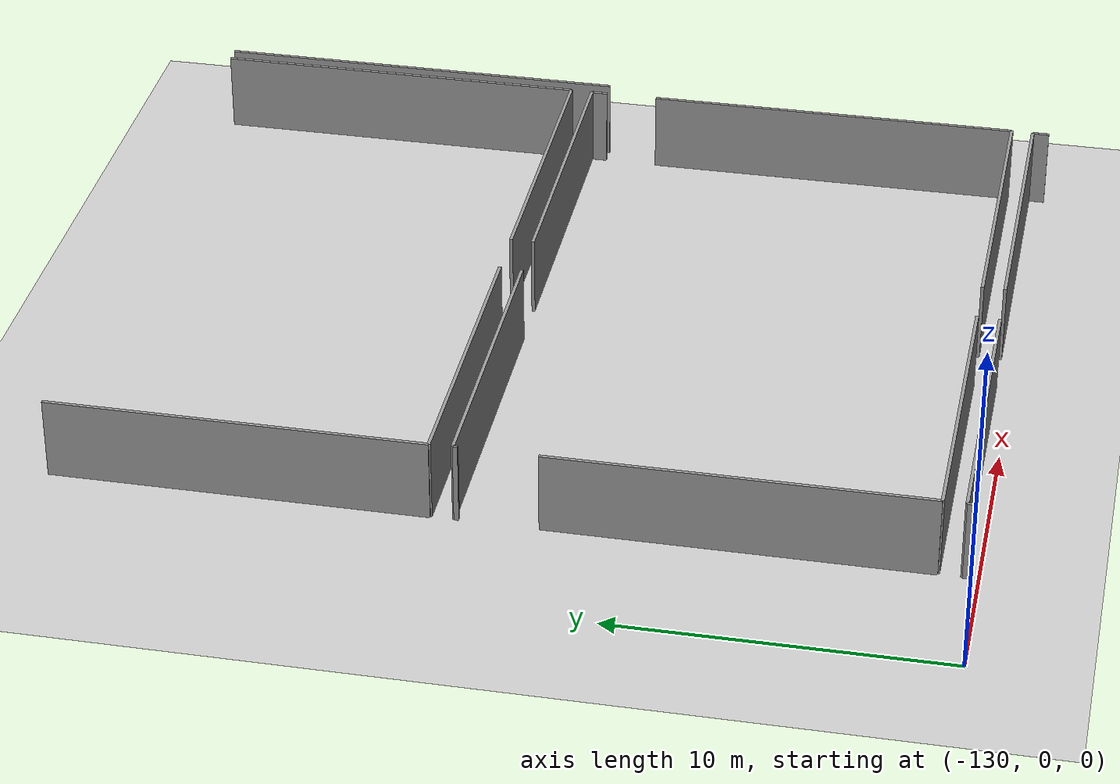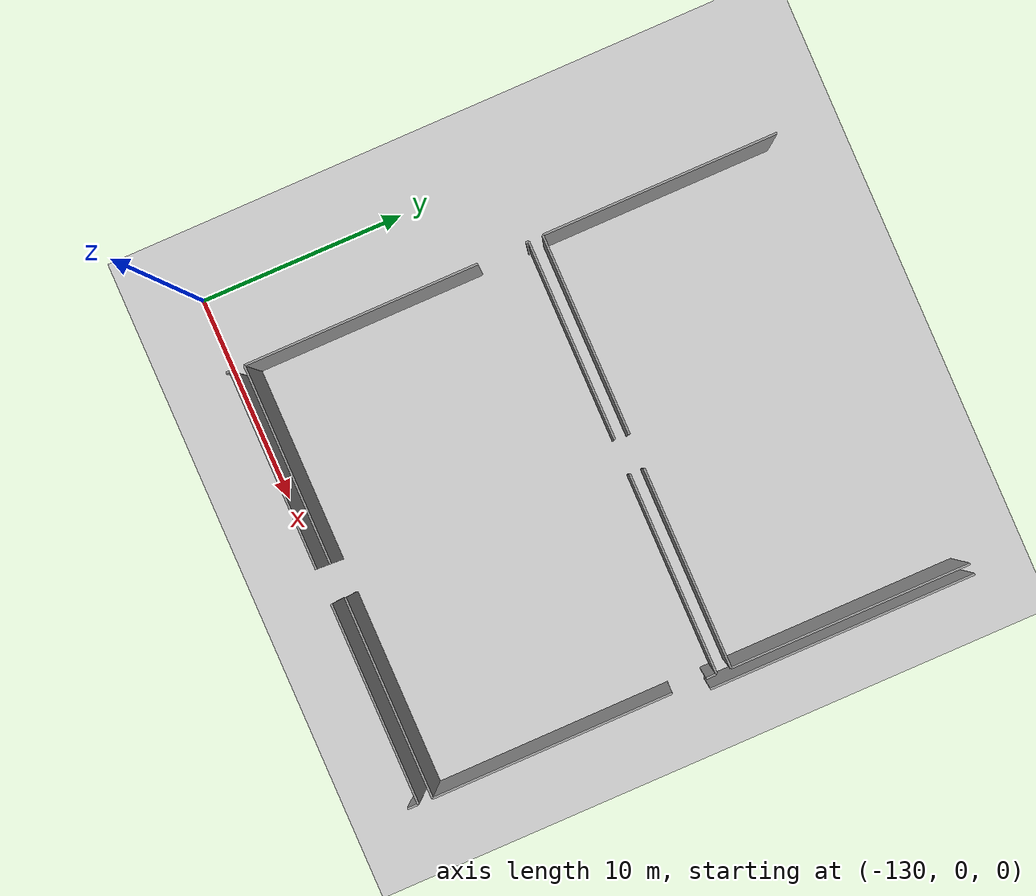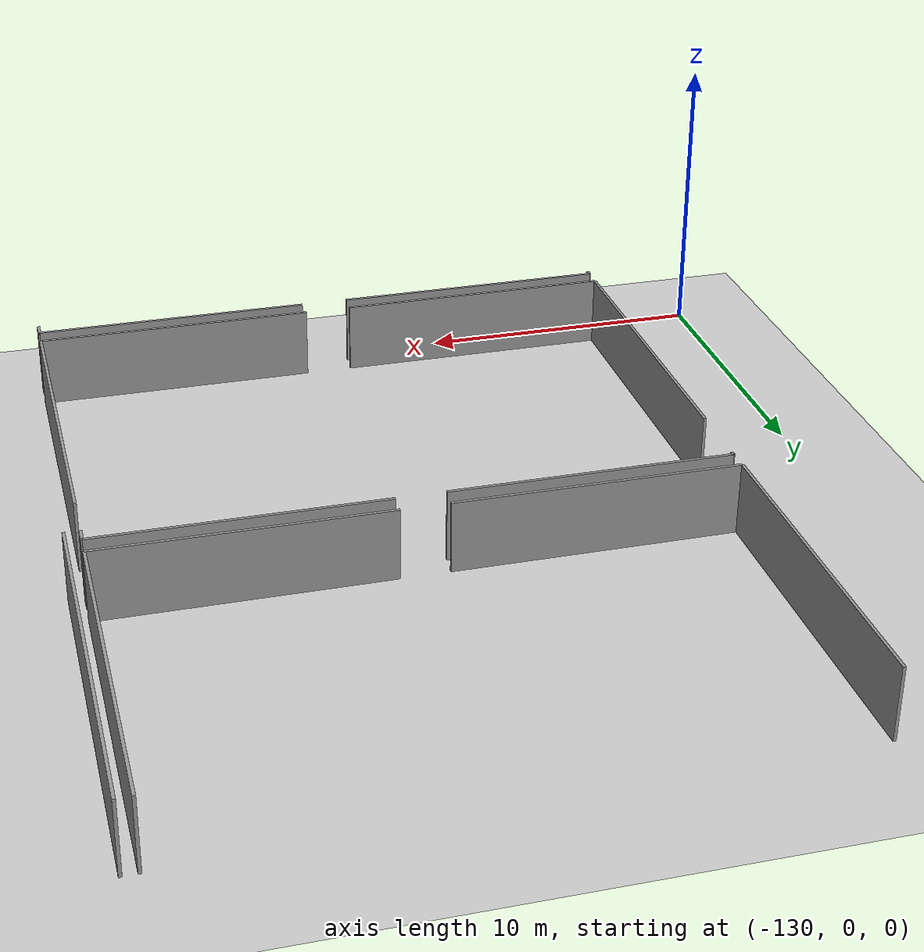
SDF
<sdf version="1.6">
 <world name="default">
  <model name="ground_plane">
   <static>1</static>
   <link name="link">
    <collision name="collision">
     <geometry><plane><normal>0 0 1</normal><size>100 100</size></plane></geometry>
     <surface><friction><ode><mu>100</mu><mu2>50</mu2></ode></friction></surface>
    </collision>
    <visual name="visual">
     <cast_shadows>0</cast_shadows>
     <geometry><plane><normal>0 0 1</normal><size>100 100</size></plane></geometry>
     <material>
      <script><uri>file://media/materials/scripts/gazebo.material</uri><name>Gazebo/Grey</name></script>
     </material>
    </visual>
   </link>
  </model>
  <model name="50015849">
   <static>1</static>
   <link name="Wall_6">
    <collision name="Wall_6_Collision">
     <geometry><box><size>12.7688976103 0.1 2.5</size></box></geometry>
     <pose>6.38444880515 0 1.25 0 0 0</pose>
    </collision>
    <visual name="Wall_6_Visual">
     <pose>6.38444880515 0 1.25 0 0 0</pose>
     <geometry><box><size>12.7688976103 0.1 2.5</size></box></geometry>
     <material>
      <script><uri>file://media/materials/scripts/gazebo.material</uri><name>Gazebo/Grey</name></script>
      <ambient>1 1 1 1</ambient>
     </material>
    </visual>
    <pose>21.4254415211 -29.3879987553 0 0 0 1.57079632679</pose>
   </link>
   <link name="Wall_19">
    <collision name="Wall_19_Collision">
     <geometry><box><size>9.63655877104 0.1 2.5</size></box></geometry>
     <pose>4.81827938552 0 1.25 0 0 0</pose>
    </collision>
    <visual name="Wall_19_Visual">
     <pose>4.81827938552 0 1.25 0 0 0</pose>
     <geometry><box><size>9.63655877104 0.1 2.5</size></box></geometry>
     <material>
      <script><uri>file://media/materials/scripts/gazebo.material</uri><name>Gazebo/Grey</name></script>
      <ambient>1 1 1 1</ambient>
     </material>
    </visual>
    <pose>20.9313697473 -28.1798726082 0 0 0 3.14159265359</pose>
   </link>
   <link name="Wall_20">
    <collision name="Wall_20_Collision">
     <geometry><box><size>9.62055541796 0.1 2.5</size></box></geometry>
     <pose>4.81027770898 0 1.25 0 0 0</pose>
    </collision>
    <visual name="Wall_20_Visual">
     <pose>4.81027770898 0 1.25 0 0 0</pose>
     <geometry><box><size>9.62055541796 0.1 2.5</size></box></geometry>
     <material>
      <script><uri>file://media/materials/scripts/gazebo.material</uri><name>Gazebo/Grey</name></script>
      <ambient>1 1 1 1</ambient>
     </material>
    </visual>
    <pose>9.66145287584 -28.1798726082 0 0 0 3.14159265359</pose>
   </link>
   <link name="Wall_21">
    <collision name="Wall_21_Collision">
     <geometry><box><size>11.2993833629 0.1 2.5</size></box></geometry>
     <pose>5.64969168143 0 1.25 0 0 0</pose>
    </collision>
    <visual name="Wall_21_Visual">
     <pose>5.64969168143 0 1.25 0 0 0</pose>
     <geometry><box><size>11.2993833629 0.1 2.5</size></box></geometry>
     <material>
      <script><uri>file://media/materials/scripts/gazebo.material</uri><name>Gazebo/Grey</name></script>
      <ambient>1 1 1 1</ambient>
     </material>
    </visual>
    <pose>0.0408974578801 -28.1798726082 0 0 0 1.57079632679</pose>
   </link>
   <link name="Wall_26">
    <collision name="Wall_26_Collision">
     <geometry><box><size>11.5490873804 0.1 2.5</size></box></geometry>
     <pose>5.77454369019 0 1.25 0 0 0</pose>
    </collision>
    <visual name="Wall_26_Visual">
     <pose>5.77454369019 0 1.25 0 0 0</pose>
     <geometry><box><size>11.5490873804 0.1 2.5</size></box></geometry>
     <material>
      <script><uri>file://media/materials/scripts/gazebo.material</uri><name>Gazebo/Grey</name></script>
      <ambient>1 1 1 1</ambient>
     </material>
    </visual>
    <pose>20.9267973607 -16.630786133 0 0 0 -1.57040041787</pose>
   </link>
   <link name="Wall_27">
    <collision name="Wall_27_Collision">
     <geometry><box><size>9.68456883029 0.1 2.5</size></box></geometry>
     <pose>4.84228441515 0 1.25 0 0 0</pose>
    </collision>
    <visual name="Wall_27_Visual">
     <pose>4.84228441515 0 1.25 0 0 0</pose>
     <geometry><box><size>9.68456883029 0.1 2.5</size></box></geometry>
     <material>
      <script><uri>file://media/materials/scripts/gazebo.material</uri><name>Gazebo/Grey</name></script>
      <ambient>1 1 1 1</ambient>
     </material>
    </visual>
    <pose>20.9521995085 -42.5978776506 0 0 0 3.14159265359</pose>
   </link>
   <link name="Wall_28">
    <collision name="Wall_28_Collision">
     <geometry><box><size>9.58042002451 0.1 2.5</size></box></geometry>
     <pose>4.79021001226 0 1.25 0 0 0</pose>
    </collision>
    <visual name="Wall_28_Visual">
     <pose>4.79021001226 0 1.25 0 0 0</pose>
     <geometry><box><size>9.58042002451 0.1 2.5</size></box></geometry>
     <material>
      <script><uri>file://media/materials/scripts/gazebo.material</uri><name>Gazebo/Grey</name></script>
      <ambient>1 1 1 1</ambient>
     </material>
    </visual>
    <pose>9.64163920059 -42.5978776506 0 0 0 3.14159265359</pose>
   </link>
   <link name="Wall_29">
    <collision name="Wall_29_Collision">
     <geometry><box><size>11.275505344 0.1 2.5</size></box></geometry>
     <pose>5.63775267199 0 1.25 0 0 0</pose>
    </collision>
    <visual name="Wall_29_Visual">
     <pose>5.63775267199 0 1.25 0 0 0</pose>
     <geometry><box><size>11.275505344 0.1 2.5</size></box></geometry>
     <material>
      <script><uri>file://media/materials/scripts/gazebo.material</uri><name>Gazebo/Grey</name></script>
      <ambient>1 1 1 1</ambient>
     </material>
    </visual>
    <pose>0.0612191760813 -42.5978776506 0 0 0 1.57079632679</pose>
   </link>
   <link name="Wall_30">
    <collision name="Wall_30_Collision">
     <geometry><box><size>0.143268113319 0.1 2.5</size></box></geometry>
     <pose>0.0716340566595 0 1.25 0 0 0</pose>
    </collision>
    <visual name="Wall_30_Visual">
     <pose>0.0716340566595 0 1.25 0 0 0</pose>
     <geometry><box><size>0.143268113319 0.1 2.5</size></box></geometry>
     <material>
      <script><uri>file://media/materials/scripts/gazebo.material</uri><name>Gazebo/Grey</name></script>
      <ambient>1 1 1 1</ambient>
     </material>
    </visual>
    <pose>0.0612191760813 -29.0084906679 0 0 0 1.57079632679</pose>
   </link>
   <link name="Wall_31">
    <collision name="Wall_31_Collision">
     <geometry><box><size>9.55425581233 0.1 2.5</size></box></geometry>
     <pose>4.77712790616 0 1.25 0 0 0</pose>
    </collision>
    <visual name="Wall_31_Visual">
     <pose>4.77712790616 0 1.25 0 0 0</pose>
     <geometry><box><size>9.55425581233 0.1 2.5</size></box></geometry>
     <material>
      <script><uri>file://media/materials/scripts/gazebo.material</uri><name>Gazebo/Grey</name></script>
      <ambient>1 1 1 1</ambient>
     </material>
    </visual>
    <pose>0.0612191760813 -28.8652225546 0 0 0 0.0</pose>
   </link>
   <link name="Wall_32">
    <collision name="Wall_32_Collision">
     <geometry><box><size>9.64367137241 0.1 2.5</size></box></geometry>
     <pose>4.82183568621 0 1.25 0 0 0</pose>
    </collision>
    <visual name="Wall_32_Visual">
     <pose>4.82183568621 0 1.25 0 0 0</pose>
     <geometry><box><size>9.64367137241 0.1 2.5</size></box></geometry>
     <material>
      <script><uri>file://media/materials/scripts/gazebo.material</uri><name>Gazebo/Grey</name></script>
      <ambient>1 1 1 1</ambient>
     </material>
    </visual>
    <pose>11.2737271936 -28.8652225546 0 0 0 0.0</pose>
   </link>
   <link name="Wall_33">
    <collision name="Wall_33_Collision">
     <geometry><box><size>0.510837191285 0.1 2.5</size></box></geometry>
     <pose>0.255418595642 0 1.25 0 0 0</pose>
    </collision>
    <visual name="Wall_33_Visual">
     <pose>0.255418595642 0 1.25 0 0 0</pose>
     <geometry><box><size>0.510837191285 0.1 2.5</size></box></geometry>
     <material>
      <script><uri>file://media/materials/scripts/gazebo.material</uri><name>Gazebo/Grey</name></script>
      <ambient>1 1 1 1</ambient>
     </material>
    </visual>
    <pose>20.917398566 -28.8652225546 0 0 0 -1.57079632679</pose>
   </link>
   <link name="Wall_34">
    <collision name="Wall_34_Collision">
     <geometry><box><size>11.5951165876 0.1 2.5</size></box></geometry>
     <pose>5.79755829381 0 1.25 0 0 0</pose>
    </collision>
    <visual name="Wall_34_Visual">
     <pose>5.79755829381 0 1.25 0 0 0</pose>
     <geometry><box><size>11.5951165876 0.1 2.5</size></box></geometry>
     <material>
      <script><uri>file://media/materials/scripts/gazebo.material</uri><name>Gazebo/Grey</name></script>
      <ambient>1 1 1 1</ambient>
     </material>
    </visual>
    <pose>20.917398566 -31.0028132879 0 0 0 -1.56779497753</pose>
   </link>
   <link name="Wall_38">
    <collision name="Wall_38_Collision">
     <geometry><box><size>0.203217182013 0.1 2.5</size></box></geometry>
     <pose>0.101608591006 0 1.25 0 0 0</pose>
    </collision>
    <visual name="Wall_38_Visual">
     <pose>0.101608591006 0 1.25 0 0 0</pose>
     <geometry><box><size>0.203217182013 0.1 2.5</size></box></geometry>
     <material>
      <script><uri>file://media/materials/scripts/gazebo.material</uri><name>Gazebo/Grey</name></script>
      <ambient>1 1 1 1</ambient>
     </material>
    </visual>
    <pose>0.0505502740257 -43.4785701131 0 0 0 1.57079632679</pose>
   </link>
   <link name="Wall_39">
    <collision name="Wall_39_Collision">
     <geometry><box><size>9.55273168346 0.1 2.5</size></box></geometry>
     <pose>4.77636584173 0 1.25 0 0 0</pose>
    </collision>
    <visual name="Wall_39_Visual">
     <pose>4.77636584173 0 1.25 0 0 0</pose>
     <geometry><box><size>9.55273168346 0.1 2.5</size></box></geometry>
     <material>
      <script><uri>file://media/materials/scripts/gazebo.material</uri><name>Gazebo/Grey</name></script>
      <ambient>1 1 1 1</ambient>
     </material>
    </visual>
    <pose>0.0505502740257 -43.2753529311 0 0 0 0.0</pose>
   </link>
   <link name="Wall_40">
    <collision name="Wall_40_Collision">
     <geometry><box><size>9.65408625299 0.1 2.5</size></box></geometry>
     <pose>4.8270431265 0 1.25 0 0 0</pose>
    </collision>
    <visual name="Wall_40_Visual">
     <pose>4.8270431265 0 1.25 0 0 0</pose>
     <geometry><box><size>9.65408625299 0.1 2.5</size></box></geometry>
     <material>
      <script><uri>file://media/materials/scripts/gazebo.material</uri><name>Gazebo/Grey</name></script>
      <ambient>1 1 1 1</ambient>
     </material>
    </visual>
    <pose>11.2816018594 -43.2753529311 0 0 0 0.0</pose>
   </link>
   <link name="Wall_41">
    <collision name="Wall_41_Collision">
     <geometry><box><size>0.51845783561 0.1 2.5</size></box></geometry>
     <pose>0.259228917805 0 1.25 0 0 0</pose>
    </collision>
    <visual name="Wall_41_Visual">
     <pose>0.259228917805 0 1.25 0 0 0</pose>
     <geometry><box><size>0.51845783561 0.1 2.5</size></box></geometry>
     <material>
      <script><uri>file://media/materials/scripts/gazebo.material</uri><name>Gazebo/Grey</name></script>
      <ambient>1 1 1 1</ambient>
     </material>
    </visual>
    <pose>20.9356881124 -43.2753529311 0 0 0 -1.57079632679</pose>
   </link>
   <pose>-126.05 43.7425752697 0 0 0 0</pose>
  </model>
 </world>
</sdf>
